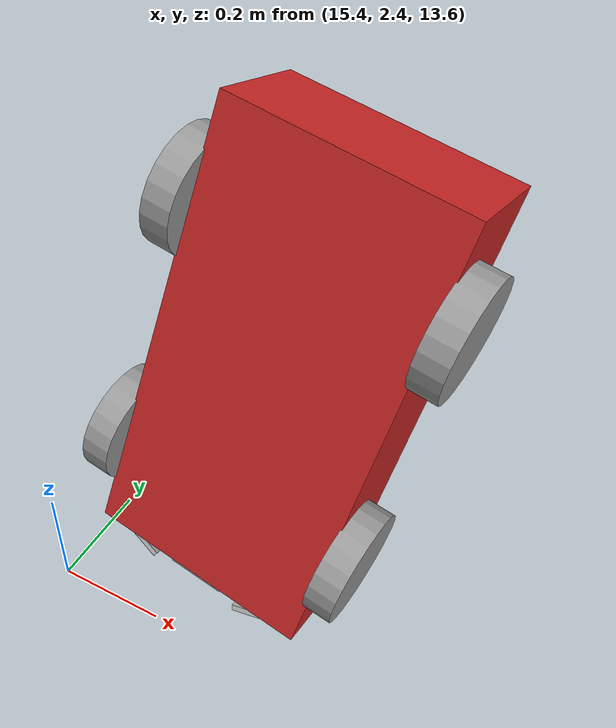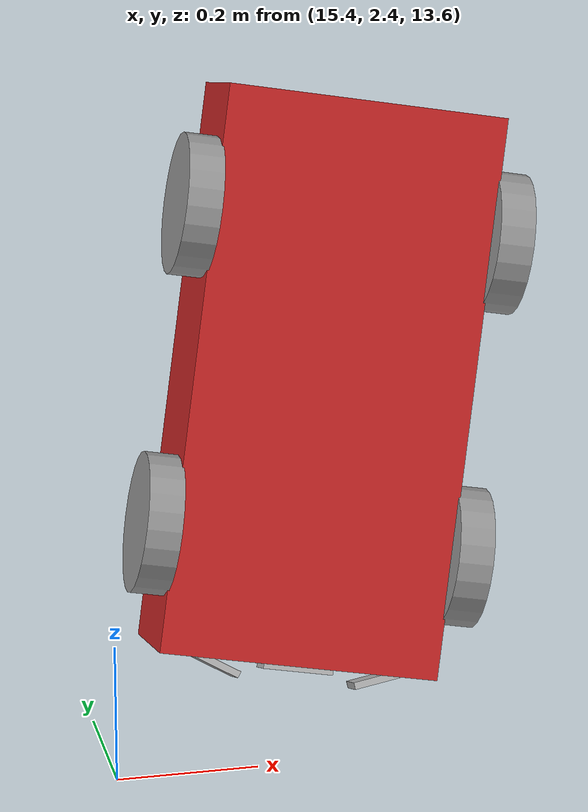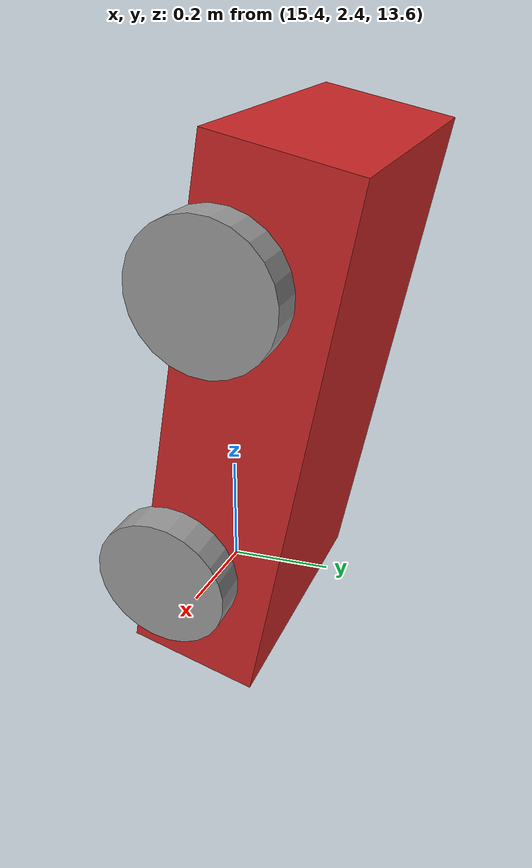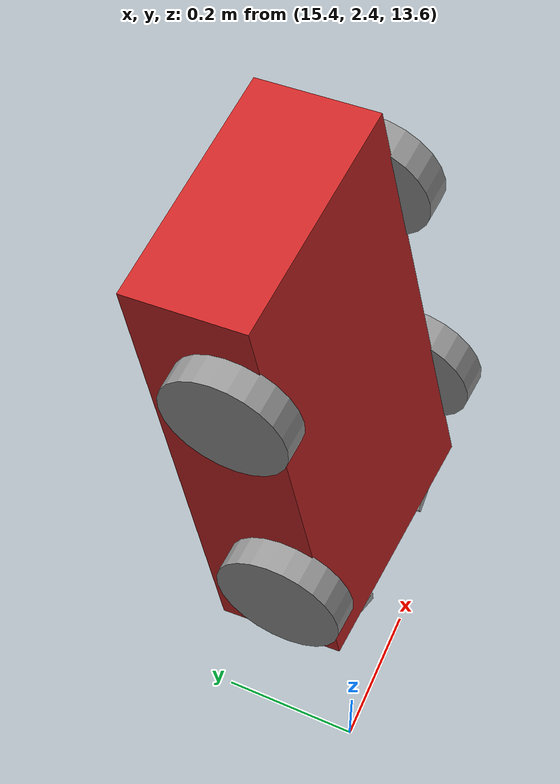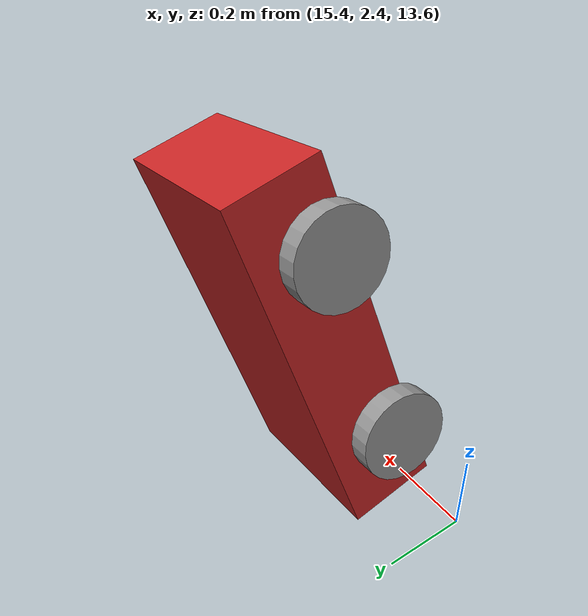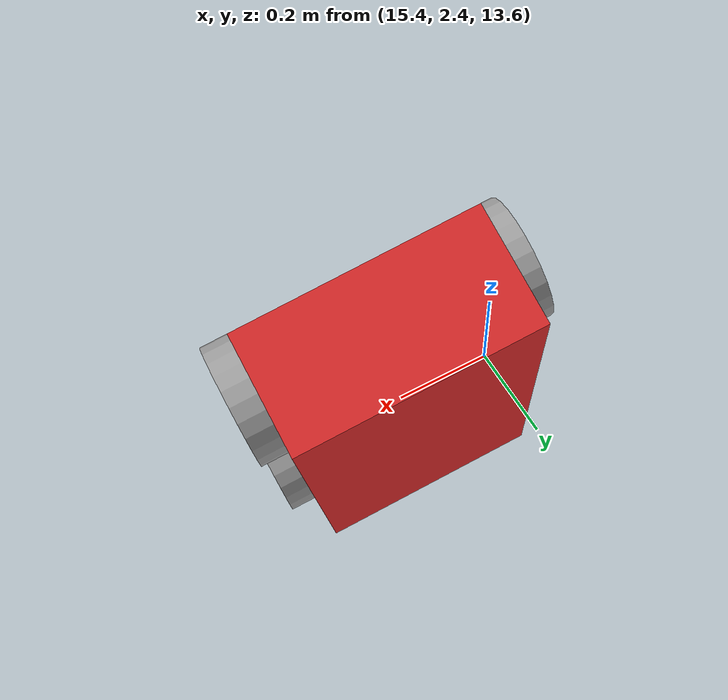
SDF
<sdf version="1.7">
 <world name="default">
  <light name="sun" type="directional">
   <pose>0 0 10 0 -0 0</pose>
   <diffuse>0.8 0.8 0.8 1</diffuse>
   <specular>0.2 0.2 0.2 1</specular>
   <attenuation>
    <range>1000</range>
    <constant>0.9</constant>
    <linear>0.01</linear>
    <quadratic>0.001</quadratic>
   </attenuation>
   <direction>-0.5 0.1 -0.9</direction>
   <spot><inner_angle>0</inner_angle><outer_angle>0</outer_angle><falloff>0</falloff></spot>
  </light>
  <model name="ground_plane">
   <static>1</static>
   <link name="link">
    <collision name="collision">
     <geometry><plane><normal>0 0 1</normal><size>100 100</size></plane></geometry>
     <surface><friction><ode><mu>10000</mu><mu2>10200</mu2></ode></friction></surface>
    </collision>
    <visual name="visual">
     <cast_shadows>0</cast_shadows>
     <geometry><plane><normal>0 0 1</normal><size>100 100</size></plane></geometry>
     <material>
      <script><uri>file://media/materials/scripts/gazebo.material</uri><name>Gazebo/Grey</name></script>
     </material>
    </visual>
   </link>
  </model>
  <gravity>0 0 -9.8</gravity>
  <magnetic_field>6e-06 2.3e-05 -4.2e-05</magnetic_field>
  <atmosphere type="adiabatic"/>
  <physics type="ode">
   <max_step_size>0.001</max_step_size>
   <real_time_factor>1</real_time_factor>
   <real_time_update_rate>1000</real_time_update_rate>
  </physics>
  <scene><ambient>0.4 0.4 0.4 1</ambient><background>0.7 0.7 0.7 1</background><shadows>1</shadows></scene>
  <audio><device>default</device></audio>
  <spherical_coordinates>
   <surface_model>EARTH_WGS84</surface_model>
   <latitude_deg>0</latitude_deg>
   <longitude_deg>0</longitude_deg>
   <elevation>0</elevation>
   <heading_deg>0</heading_deg>
  </spherical_coordinates>
  <model name="my_robot">
   <link name="base_footprint">
    <inertial>
     <pose>0.015069 0.002019 -0.189904 0 -0 0</pose>
     <mass>10.4</mass>
     <inertia>
      <ixx>2.26998</ixx>
      <ixy>-0.00823145</ixy>
      <ixz>-0.0297612</ixz>
      <iyy>2.1321</iyy>
      <iyz>-0.00398798</iyz>
      <izz>0.398665</izz>
     </inertia>
    </inertial>
    <collision name="base_footprint_fixed_joint_lump__base_link_collision">
     <geometry><box><size>0.8 0.2 0.4</size></box></geometry>
    </collision>
    <collision name="base_footprint_fixed_joint_lump__camera_link_collision_1">
     <pose>0.352174 0 -0 1.5708 -0 0.25</pose>
     <geometry><box><size>0.01 0.1 0.05</size></box></geometry>
    </collision>
    <collision name="base_footprint_fixed_joint_lump__imu_link_collision_2">
     <pose>0 0 0.03 0 -0 0</pose>
     <geometry><box><size>0.03 0.05 0.01</size></box></geometry>
    </collision>
    <collision name="base_footprint_fixed_joint_lump__sensor2_link_collision_3">
     <pose>0.405 0.07 -0.13 1.5708 0.35 0.1</pose>
     <geometry><box><size>0.01 0.1 0.05</size></box></geometry>
    </collision>
    <collision name="base_footprint_fixed_joint_lump__sensor3_link_collision_4">
     <pose>0.405 0.07 0.13 1.5708 -0.35 0.1</pose>
     <geometry><box><size>0.01 0.1 0.05</size></box></geometry>
    </collision>
    <collision name="base_footprint_fixed_joint_lump__sensor1_link_collision_5">
     <pose>0.405 0.07 -0 1.5708 -0 0.1</pose>
     <geometry><box><size>0.01 0.1 0.05</size></box></geometry>
    </collision>
    <visual name="base_footprint_fixed_joint_lump__base_link_visual">
     <geometry><box><size>0.8 0.2 0.4</size></box></geometry>
     <material>
      <script><name>Gazebo/Red</name><uri>file://media/materials/scripts/gazebo.material</uri></script>
     </material>
    </visual>
    <visual name="base_footprint_fixed_joint_lump__camera_link_visual_1">
     <pose>0.352174 0 -0 1.5708 -0 0.25</pose>
     <geometry><box><size>0.01 0.1 0.05</size></box></geometry>
     <material>
      <script><name>Gazebo/Red</name><uri>file://media/materials/scripts/gazebo.material</uri></script>
     </material>
    </visual>
    <visual name="base_footprint_fixed_joint_lump__imu_link_visual_2">
     <pose>0 0 0.03 0 -0 0</pose>
     <geometry><box><size>0.03 0.05 0.01</size></box></geometry>
    </visual>
    <visual name="base_footprint_fixed_joint_lump__sensor2_link_visual_3">
     <pose>0.405 0.07 -0.13 1.5708 0.35 0.1</pose>
     <geometry><box><size>0.01 0.1 0.05</size></box></geometry>
    </visual>
    <visual name="base_footprint_fixed_joint_lump__sensor3_link_visual_4">
     <pose>0.405 0.07 0.13 1.5708 -0.35 0.1</pose>
     <geometry><box><size>0.01 0.1 0.05</size></box></geometry>
    </visual>
    <visual name="base_footprint_fixed_joint_lump__sensor1_link_visual_5">
     <pose>0.405 0.07 -0 1.5708 -0 0.1</pose>
     <geometry><box><size>0.01 0.1 0.05</size></box></geometry>
    </visual>
    <sensor name="camera_sensor" type="camera">
     <visualize>1</visualize>
     <update_rate>20</update_rate>
     <plugin name="camera_controller" filename="libgazebo_ros_camera.so">
      <frame_name>camera_link_optical</frame_name>
     </plugin>
     <pose>0.352174 0 -0 1.5708 -0 0.25</pose>
     <camera>
      <horizontal_fov>1.047</horizontal_fov>
      <image><width>320</width><height>240</height></image>
      <clip><near>0.1</near><far>100</far></clip>
     </camera>
    </sensor>
    <sensor name="imu" type="imu">
     <plugin name="imu_plugin" filename="libgazebo_ros_imu_sensor.so">
      <ros><remapping>~/out:=/data/imu</remapping></ros>
      <initial_orientation_as_reference>0</initial_orientation_as_reference>
     </plugin>
     <always_on>1</always_on>
     <update_rate>100</update_rate>
     <imu>
      <angular_velocity>
       <x>
        <noise type="gaussian">
         <mean>0</mean>
         <stddev>1.74533e-05</stddev>
         <bias_mean>0</bias_mean>
         <bias_stddev>0</bias_stddev>
        </noise>
       </x>
       <y>
        <noise type="gaussian">
         <mean>0</mean>
         <stddev>1.74533e-05</stddev>
         <bias_mean>0</bias_mean>
         <bias_stddev>0</bias_stddev>
        </noise>
       </y>
       <z>
        <noise type="gaussian">
         <mean>0</mean>
         <stddev>1.74533e-05</stddev>
         <bias_mean>0</bias_mean>
         <bias_stddev>0</bias_stddev>
        </noise>
       </z>
      </angular_velocity>
      <linear_acceleration>
       <x>
        <noise type="gaussian">
         <mean>0</mean>
         <stddev>0.017</stddev>
         <bias_mean>0.1</bias_mean>
         <bias_stddev>0.001</bias_stddev>
        </noise>
       </x>
       <y>
        <noise type="gaussian">
         <mean>0</mean>
         <stddev>0.017</stddev>
         <bias_mean>0.1</bias_mean>
         <bias_stddev>0.001</bias_stddev>
        </noise>
       </y>
       <z>
        <noise type="gaussian">
         <mean>0</mean>
         <stddev>0.017</stddev>
         <bias_mean>0.1</bias_mean>
         <bias_stddev>0.001</bias_stddev>
        </noise>
       </z>
      </linear_acceleration>
     </imu>
     <pose>0 0 0.1 0 -0 0</pose>
    </sensor>
    <sensor name="sensor_ultrasound2" type="ray">
     <always_on>1</always_on>
     <visualize>1</visualize>
     <update_rate>10</update_rate>
     <ray>
      <scan>
       <horizontal>
        <samples>5</samples>
        <resolution>1</resolution>
        <min_angle>-0.08</min_angle>
        <max_angle>0.08</max_angle>
       </horizontal>
       <vertical><samples>1</samples><min_angle>0</min_angle><max_angle>0</max_angle></vertical>
      </scan>
      <range><min>0.2</min><max>2</max><resolution>0.01</resolution></range>
     </ray>
     <plugin name="sensor_controller2" filename="libgazebo_ros_ray_sensor.so">
      <ros><remapping>~/out:=/range/raw</remapping></ros>
      <radiation_type>ultrasound</radiation_type>
      <output_type>sensor_msgs/Range</output_type>
      <frame_name>base_link</frame_name>
     </plugin>
     <pose>0.405 0.07 -0.13 1.5708 0.35 0.1</pose>
    </sensor>
    <sensor name="sensor_ultrasound3" type="ray">
     <always_on>1</always_on>
     <visualize>1</visualize>
     <update_rate>10</update_rate>
     <ray>
      <scan>
       <horizontal>
        <samples>5</samples>
        <resolution>1</resolution>
        <min_angle>-0.08</min_angle>
        <max_angle>0.08</max_angle>
       </horizontal>
       <vertical><samples>1</samples><min_angle>0</min_angle><max_angle>0</max_angle></vertical>
      </scan>
      <range><min>0.2</min><max>2</max><resolution>0.01</resolution></range>
     </ray>
     <plugin name="sensor_controller3" filename="libgazebo_ros_ray_sensor.so">
      <ros><remapping>~/out:=/range/raw</remapping></ros>
      <radiation_type>ultrasound</radiation_type>
      <output_type>sensor_msgs/Range</output_type>
      <frame_name>base_link</frame_name>
     </plugin>
     <pose>0.405 0.07 0.13 1.5708 -0.35 0.1</pose>
    </sensor>
    <sensor name="sensor_ultrasound1" type="ray">
     <always_on>1</always_on>
     <visualize>1</visualize>
     <update_rate>10</update_rate>
     <ray>
      <scan>
       <horizontal>
        <samples>5</samples>
        <resolution>1</resolution>
        <min_angle>-0.08</min_angle>
        <max_angle>0.08</max_angle>
       </horizontal>
       <vertical><samples>1</samples><min_angle>0</min_angle><max_angle>0</max_angle></vertical>
      </scan>
      <range><min>0.2</min><max>2</max><resolution>0.01</resolution></range>
     </ray>
     <plugin name="sensor_controller1" filename="libgazebo_ros_ray_sensor.so">
      <ros><remapping>~/out:=/range/raw</remapping></ros>
      <radiation_type>ultrasound</radiation_type>
      <output_type>sensor_msgs/Range</output_type>
      <frame_name>base_link</frame_name>
     </plugin>
     <pose>0.405 0.07 -0 1.5708 -0 0.1</pose>
    </sensor>
   </link>
   <joint name="base_left_rear_wheel_joint" type="revolute">
    <pose relative_to="base_footprint">-0.225 0.05 0.2225 1.5708 -0 0</pose>
    <parent>base_footprint</parent>
    <child>left_rear_wheel_link</child>
    <axis>
     <xyz>0 1 0</xyz>
     <limit><lower>-1e+16</lower><upper>1e+16</upper></limit>
     <dynamics><spring_reference>0</spring_reference><spring_stiffness>0</spring_stiffness></dynamics>
    </axis>
   </joint>
   <link name="left_rear_wheel_link">
    <pose relative_to="base_left_rear_wheel_joint">0 0 0 0 -0 0</pose>
    <inertial>
     <pose>0 0 0 1.5708 -0 0</pose>
     <mass>1</mass>
     <inertia><ixx>0.0108333</ixx><ixy>0</ixy><ixz>0</ixz><iyy>0.0108333</iyy><iyz>0</iyz><izz>0.02</izz></inertia>
    </inertial>
    <collision name="left_rear_wheel_link_collision">
     <pose>0 0 0 1.5708 -0 0</pose>
     <geometry><cylinder><length>0.05</length><radius>0.1</radius></cylinder></geometry>
    </collision>
    <visual name="left_rear_wheel_link_visual">
     <pose>0 0 0 1.5708 -0 0</pose>
     <geometry><cylinder><length>0.05</length><radius>0.1</radius></cylinder></geometry>
     <material>
      <script><name>Gazebo/Grey</name><uri>file://media/materials/scripts/gazebo.material</uri></script>
     </material>
    </visual>
    <surface><friction><ode><mu>100</mu><mu2>50</mu2></ode></friction></surface>
   </link>
   <joint name="base_left_wheel_joint" type="revolute">
    <pose relative_to="base_footprint">0.225 0.05 0.2225 1.5708 -0 0</pose>
    <parent>base_footprint</parent>
    <child>left_wheel_link</child>
    <axis>
     <xyz>0 1 0</xyz>
     <limit><lower>-1e+16</lower><upper>1e+16</upper></limit>
     <dynamics><spring_reference>0</spring_reference><spring_stiffness>0</spring_stiffness></dynamics>
    </axis>
   </joint>
   <link name="left_wheel_link">
    <pose relative_to="base_left_wheel_joint">0 0 0 0 -0 0</pose>
    <inertial>
     <pose>0 0 0 1.5708 -0 0</pose>
     <mass>1</mass>
     <inertia><ixx>0.0108333</ixx><ixy>0</ixy><ixz>0</ixz><iyy>0.0108333</iyy><iyz>0</iyz><izz>0.02</izz></inertia>
    </inertial>
    <collision name="left_wheel_link_collision">
     <pose>0 0 0 1.5708 -0 0</pose>
     <geometry><cylinder><length>0.05</length><radius>0.1</radius></cylinder></geometry>
    </collision>
    <visual name="left_wheel_link_visual">
     <pose>0 0 0 1.5708 -0 0</pose>
     <geometry><cylinder><length>0.05</length><radius>0.1</radius></cylinder></geometry>
     <material>
      <script><name>Gazebo/Grey</name><uri>file://media/materials/scripts/gazebo.material</uri></script>
     </material>
    </visual>
    <surface><friction><ode><mu>100</mu><mu2>50</mu2></ode></friction></surface>
   </link>
   <joint name="base_right_rear_wheel_joint" type="revolute">
    <pose relative_to="base_footprint">-0.225 0.05 -0.2225 1.5708 -0 0</pose>
    <parent>base_footprint</parent>
    <child>right_rear_wheel_link</child>
    <axis>
     <xyz>0 1 0</xyz>
     <limit><lower>-1e+16</lower><upper>1e+16</upper></limit>
     <dynamics><spring_reference>0</spring_reference><spring_stiffness>0</spring_stiffness></dynamics>
    </axis>
   </joint>
   <link name="right_rear_wheel_link">
    <pose relative_to="base_right_rear_wheel_joint">0 0 0 0 -0 0</pose>
    <inertial>
     <pose>0 0 0 1.5708 -0 0</pose>
     <mass>1</mass>
     <inertia><ixx>0.0108333</ixx><ixy>0</ixy><ixz>0</ixz><iyy>0.0108333</iyy><iyz>0</iyz><izz>0.02</izz></inertia>
    </inertial>
    <collision name="right_rear_wheel_link_collision">
     <pose>0 0 0 1.5708 -0 0</pose>
     <geometry><cylinder><length>0.05</length><radius>0.1</radius></cylinder></geometry>
    </collision>
    <visual name="right_rear_wheel_link_visual">
     <pose>0 0 0 1.5708 -0 0</pose>
     <geometry><cylinder><length>0.05</length><radius>0.1</radius></cylinder></geometry>
     <material>
      <script><name>Gazebo/Grey</name><uri>file://media/materials/scripts/gazebo.material</uri></script>
     </material>
    </visual>
    <surface><friction><ode><mu>100</mu><mu2>50</mu2></ode></friction></surface>
   </link>
   <joint name="base_right_wheel_joint" type="revolute">
    <pose relative_to="base_footprint">0.225 0.05 -0.2225 1.5708 -0 0</pose>
    <parent>base_footprint</parent>
    <child>right_wheel_link</child>
    <axis>
     <xyz>0 1 0</xyz>
     <limit><lower>-1e+16</lower><upper>1e+16</upper></limit>
     <dynamics><spring_reference>0</spring_reference><spring_stiffness>0</spring_stiffness></dynamics>
    </axis>
   </joint>
   <link name="right_wheel_link">
    <pose relative_to="base_right_wheel_joint">0 0 0 0 -0 0</pose>
    <inertial>
     <pose>0 0 0 1.5708 -0 0</pose>
     <mass>1</mass>
     <inertia><ixx>0.0108333</ixx><ixy>0</ixy><ixz>0</ixz><iyy>0.0108333</iyy><iyz>0</iyz><izz>0.02</izz></inertia>
    </inertial>
    <collision name="right_wheel_link_collision">
     <pose>0 0 0 1.5708 -0 0</pose>
     <geometry><cylinder><length>0.05</length><radius>0.1</radius></cylinder></geometry>
    </collision>
    <visual name="right_wheel_link_visual">
     <pose>0 0 0 1.5708 -0 0</pose>
     <geometry><cylinder><length>0.05</length><radius>0.1</radius></cylinder></geometry>
     <material>
      <script><name>Gazebo/Grey</name><uri>file://media/materials/scripts/gazebo.material</uri></script>
     </material>
    </visual>
    <surface><friction><ode><mu>100</mu><mu2>50</mu2></ode></friction></surface>
   </link>
   <plugin name="diff_drive" filename="libgazebo_ros_diff_drive.so">
    <update_rate>10.0</update_rate>
    <num_wheel_pairs>2</num_wheel_pairs>
    <right_joint>base_right_wheel_joint</right_joint>
    <left_joint>base_left_wheel_joint</left_joint>
    <right_joint>base_right_rear_wheel_joint</right_joint>
    <left_joint>base_left_rear_wheel_joint</left_joint>
    <wheel_separation>0.445</wheel_separation>
    <wheel_diameter>0.2</wheel_diameter>
    <wheel_separation>0.445</wheel_separation>
    <wheel_diameter>0.2</wheel_diameter>
    <max_wheel_torque>200</max_wheel_torque>
    <max_wheel_acceleration>100.0</max_wheel_acceleration>
    <max_wheel_torque>200</max_wheel_torque>
    <max_wheel_acceleration>100.0</max_wheel_acceleration>
    <publish_odom>1</publish_odom>
    <publish_odom_tf>0</publish_odom_tf>
    <publish_wheel_tf>0</publish_wheel_tf>
    <odometry_frame>odom</odometry_frame>
    <robot_base_frame>base_footprint</robot_base_frame>
   </plugin>
   <plugin name="force1_plugin" filename="libgazebo_ros_force.so">
    <ros><namespace>/my_robot_namespace</namespace><remapping>gazebo_ros_force:=/apply_force</remapping></ros>
    <link_name>right_rear_wheel_link</link_name>
    <force_frame>world</force_frame>
   </plugin>
   <plugin name="force2_plugin" filename="libgazebo_ros_force.so">
    <ros><namespace>/my_robot_namespace</namespace><remapping>gazebo_ros_force:=/apply_force</remapping></ros>
    <link_name>left_wheel_link</link_name>
    <force_frame>world</force_frame>
   </plugin>
   <plugin name="force3_plugin" filename="libgazebo_ros_force.so">
    <ros><namespace>/my_robot_namespace</namespace><remapping>gazebo_ros_force:=/apply_force</remapping></ros>
    <link_name>left_rear_wheel_link</link_name>
    <force_frame>world</force_frame>
   </plugin>
   <plugin name="force4_plugin" filename="libgazebo_ros_force.so">
    <ros><namespace>/my_robot_namespace</namespace><remapping>gazebo_ros_force:=/apply_force</remapping></ros>
    <link_name>right_wheel_link</link_name>
    <force_frame>world</force_frame>
   </plugin>
   <static>0</static>
   <plugin name="joint_state_publisher" filename="libgazebo_ros_joint_state_publisher.so">
    <jointName>base_right_wheel_joint</jointName>
    <jointName>base_left_wheel_joint</jointName>
    <jointName>base_right_rear_wheel_joint</jointName>
    <jointName>base_left_rear_wheel_joint</jointName>
    <jointName>base_joint</jointName>
    <jointName>base_imu_joint</jointName>
   </plugin>
   <pose>15.7422 2.63566 14.0832 0.982685 1.25452 -2.19772</pose>
  </model>
 </world>
</sdf>
